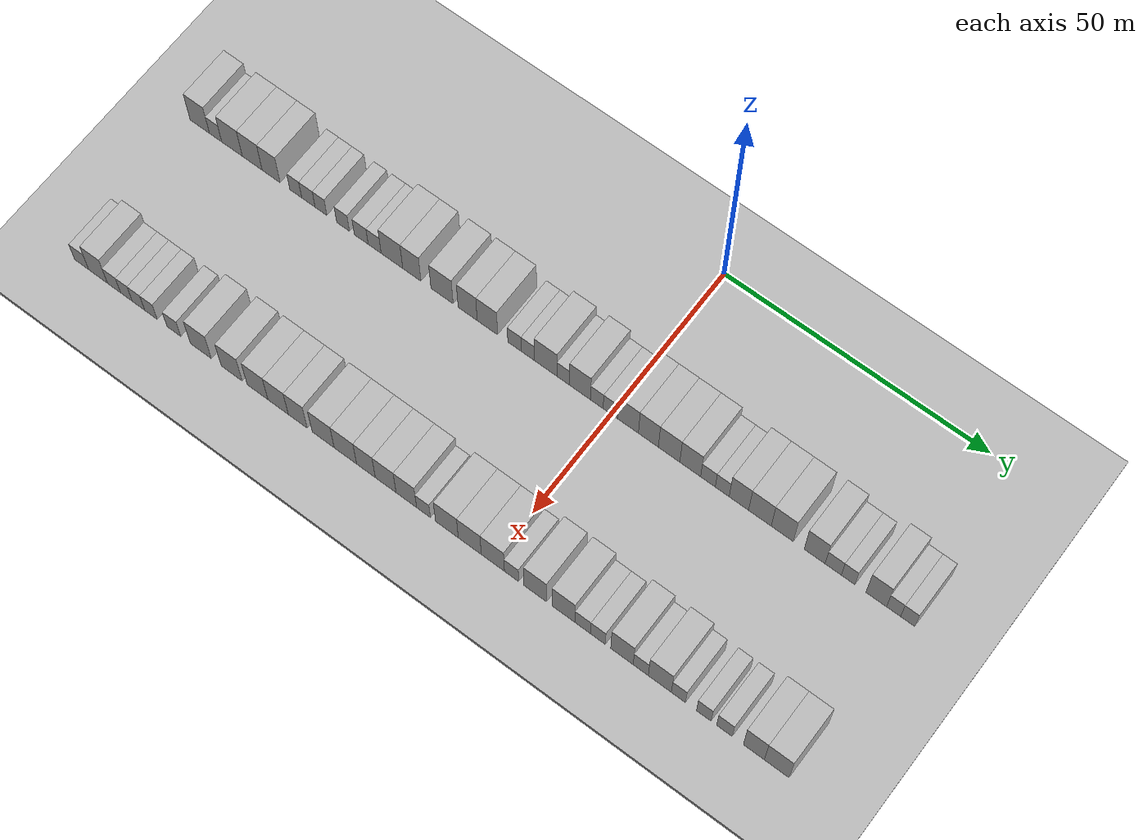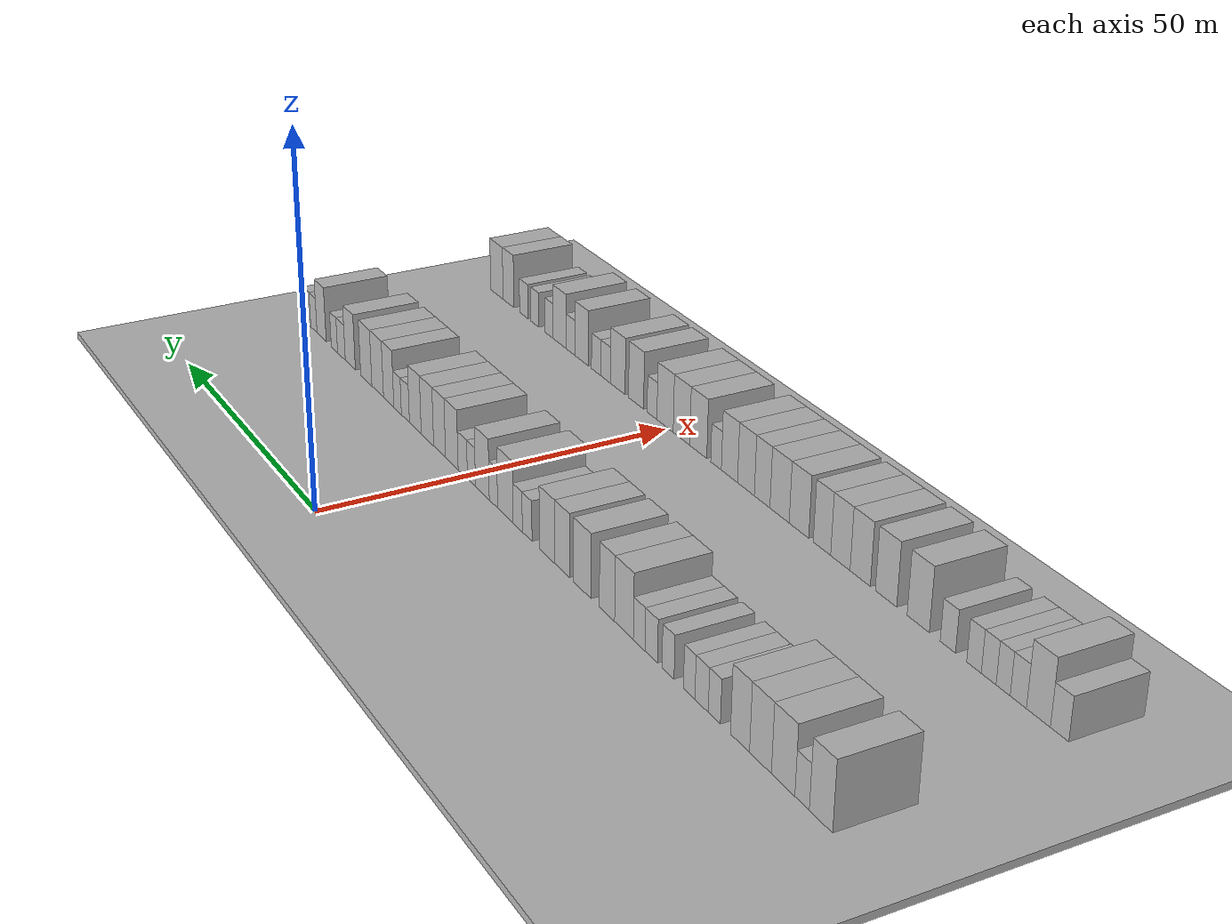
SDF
<sdf version="1.6">
 <world name="default">
  <include><name>ground_plane_1</name><uri>model://HANNAS_ground_plane</uri></include>
  <include>
   <name>ground_plane_2</name>
   <uri>model://HANNAS_ground_plane</uri>
   <pose>100 0 0  0 0 0</pose>
  </include>
  <model name="building_36">
   <static>1</static>
   <pose>25.0000 -82.6416 0 0.000000 0.000000 0.000000</pose>
   <link name="link">
    <pose>0 0 4.50 0 0 0</pose>
    <collision name="collision"><geometry><box><size>10.0000 4.0550 9.0000</size></box></geometry></collision>
    <visual name="visual">
     <cast_shadows>0</cast_shadows>
     <geometry><box><size>10.0000 4.0550 9.0000</size></box></geometry>
     <material>
      <script>
       <uri>model://HANNAS_wall/materials/scripts</uri>
       <uri>model://HANNAS_wall/materials/textures</uri>
       <name>vrc/HANNAS_wall</name>
      </script>
     </material>
    </visual>
   </link>
  </model>
  <model name="building_37">
   <static>1</static>
   <pose>25.0000 -79.3281 0 0.000000 0.000000 0.000000</pose>
   <link name="link">
    <pose>0 0 3.00 0 0 0</pose>
    <collision name="collision"><geometry><box><size>10.0000 2.5721 6.0000</size></box></geometry></collision>
    <visual name="visual">
     <cast_shadows>0</cast_shadows>
     <geometry><box><size>10.0000 2.5721 6.0000</size></box></geometry>
     <material>
      <script>
       <uri>model://HANNAS_wall/materials/scripts</uri>
       <uri>model://HANNAS_wall/materials/textures</uri>
       <name>vrc/HANNAS_wall</name>
      </script>
     </material>
    </visual>
   </link>
  </model>
  <model name="building_38">
   <static>1</static>
   <pose>25.0000 -75.8928 0 0.000000 0.000000 0.000000</pose>
   <link name="link">
    <pose>0 0 4.50 0 0 0</pose>
    <collision name="collision"><geometry><box><size>10.0000 4.2985 9.0000</size></box></geometry></collision>
    <visual name="visual">
     <cast_shadows>0</cast_shadows>
     <geometry><box><size>10.0000 4.2985 9.0000</size></box></geometry>
     <material>
      <script>
       <uri>model://HANNAS_wall/materials/scripts</uri>
       <uri>model://HANNAS_wall/materials/textures</uri>
       <name>vrc/HANNAS_wall</name>
      </script>
     </material>
    </visual>
   </link>
  </model>
  <model name="building_39">
   <static>1</static>
   <pose>25.0000 -71.6768 0 0.000000 0.000000 0.000000</pose>
   <link name="link">
    <pose>0 0 4.50 0 0 0</pose>
    <collision name="collision"><geometry><box><size>10.0000 4.1334 9.0000</size></box></geometry></collision>
    <visual name="visual">
     <cast_shadows>0</cast_shadows>
     <geometry><box><size>10.0000 4.1334 9.0000</size></box></geometry>
     <material>
      <script>
       <uri>model://HANNAS_wall/materials/scripts</uri>
       <uri>model://HANNAS_wall/materials/textures</uri>
       <name>vrc/HANNAS_wall</name>
      </script>
     </material>
    </visual>
   </link>
  </model>
  <model name="building_40">
   <static>1</static>
   <pose>25.0000 -67.7535 0 0.000000 0.000000 0.000000</pose>
   <link name="link">
    <pose>0 0 4.50 0 0 0</pose>
    <collision name="collision"><geometry><box><size>10.0000 3.7132 9.0000</size></box></geometry></collision>
    <visual name="visual">
     <cast_shadows>0</cast_shadows>
     <geometry><box><size>10.0000 3.7132 9.0000</size></box></geometry>
     <material>
      <script>
       <uri>model://HANNAS_wall/materials/scripts</uri>
       <uri>model://HANNAS_wall/materials/textures</uri>
       <name>vrc/HANNAS_wall</name>
      </script>
     </material>
    </visual>
   </link>
  </model>
  <model name="building_41">
   <static>1</static>
   <pose>25.0000 -62.6704 0 0.000000 0.000000 0.000000</pose>
   <link name="link">
    <pose>0 0 3.00 0 0 0</pose>
    <collision name="collision"><geometry><box><size>10.0000 2.4529 6.0000</size></box></geometry></collision>
    <visual name="visual">
     <cast_shadows>0</cast_shadows>
     <geometry><box><size>10.0000 2.4529 6.0000</size></box></geometry>
     <material>
      <script>
       <uri>model://HANNAS_wall/materials/scripts</uri>
       <uri>model://HANNAS_wall/materials/textures</uri>
       <name>vrc/HANNAS_wall</name>
      </script>
     </material>
    </visual>
   </link>
  </model>
  <model name="building_42">
   <static>1</static>
   <pose>25.0000 -60.0665 0 0.000000 0.000000 0.000000</pose>
   <link name="link">
    <pose>0 0 3.00 0 0 0</pose>
    <collision name="collision"><geometry><box><size>10.0000 2.7548 6.0000</size></box></geometry></collision>
    <visual name="visual">
     <cast_shadows>0</cast_shadows>
     <geometry><box><size>10.0000 2.7548 6.0000</size></box></geometry>
     <material>
      <script>
       <uri>model://HANNAS_wall/materials/scripts</uri>
       <uri>model://HANNAS_wall/materials/textures</uri>
       <name>vrc/HANNAS_wall</name>
      </script>
     </material>
    </visual>
   </link>
  </model>
  <model name="building_43">
   <static>1</static>
   <pose>25.0000 -57.4870 0 0.000000 0.000000 0.000000</pose>
   <link name="link">
    <pose>0 0 3.00 0 0 0</pose>
    <collision name="collision"><geometry><box><size>10.0000 2.4043 6.0000</size></box></geometry></collision>
    <visual name="visual">
     <cast_shadows>0</cast_shadows>
     <geometry><box><size>10.0000 2.4043 6.0000</size></box></geometry>
     <material>
      <script>
       <uri>model://HANNAS_wall/materials/scripts</uri>
       <uri>model://HANNAS_wall/materials/textures</uri>
       <name>vrc/HANNAS_wall</name>
      </script>
     </material>
    </visual>
   </link>
  </model>
  <model name="building_44">
   <static>1</static>
   <pose>25.0000 -52.9829 0 0.000000 0.000000 0.000000</pose>
   <link name="link">
    <pose>0 0 3.00 0 0 0</pose>
    <collision name="collision"><geometry><box><size>10.0000 2.6038 6.0000</size></box></geometry></collision>
    <visual name="visual">
     <cast_shadows>0</cast_shadows>
     <geometry><box><size>10.0000 2.6038 6.0000</size></box></geometry>
     <material>
      <script>
       <uri>model://HANNAS_wall/materials/scripts</uri>
       <uri>model://HANNAS_wall/materials/textures</uri>
       <name>vrc/HANNAS_wall</name>
      </script>
     </material>
    </visual>
   </link>
  </model>
  <model name="building_45">
   <static>1</static>
   <pose>25.0000 -49.2864 0 0.000000 0.000000 0.000000</pose>
   <link name="link">
    <pose>0 0 3.00 0 0 0</pose>
    <collision name="collision"><geometry><box><size>10.0000 2.7891 6.0000</size></box></geometry></collision>
    <visual name="visual">
     <cast_shadows>0</cast_shadows>
     <geometry><box><size>10.0000 2.7891 6.0000</size></box></geometry>
     <material>
      <script>
       <uri>model://HANNAS_wall/materials/scripts</uri>
       <uri>model://HANNAS_wall/materials/textures</uri>
       <name>vrc/HANNAS_wall</name>
      </script>
     </material>
    </visual>
   </link>
  </model>
  <model name="building_46">
   <static>1</static>
   <pose>25.0000 -46.5743 0 0.000000 0.000000 0.000000</pose>
   <link name="link">
    <pose>0 0 3.00 0 0 0</pose>
    <collision name="collision"><geometry><box><size>10.0000 2.6351 6.0000</size></box></geometry></collision>
    <visual name="visual">
     <cast_shadows>0</cast_shadows>
     <geometry><box><size>10.0000 2.6351 6.0000</size></box></geometry>
     <material>
      <script>
       <uri>model://HANNAS_wall/materials/scripts</uri>
       <uri>model://HANNAS_wall/materials/textures</uri>
       <name>vrc/HANNAS_wall</name>
      </script>
     </material>
    </visual>
   </link>
  </model>
  <model name="building_47">
   <static>1</static>
   <pose>25.0000 -43.0862 0 0.000000 0.000000 0.000000</pose>
   <link name="link">
    <pose>0 0 4.50 0 0 0</pose>
    <collision name="collision"><geometry><box><size>10.0000 4.3411 9.0000</size></box></geometry></collision>
    <visual name="visual">
     <cast_shadows>0</cast_shadows>
     <geometry><box><size>10.0000 4.3411 9.0000</size></box></geometry>
     <material>
      <script>
       <uri>model://HANNAS_wall/materials/scripts</uri>
       <uri>model://HANNAS_wall/materials/textures</uri>
       <name>vrc/HANNAS_wall</name>
      </script>
     </material>
    </visual>
   </link>
  </model>
  <model name="building_48">
   <static>1</static>
   <pose>25.0000 -39.0927 0 0.000000 0.000000 0.000000</pose>
   <link name="link">
    <pose>0 0 4.50 0 0 0</pose>
    <collision name="collision"><geometry><box><size>10.0000 3.6459 9.0000</size></box></geometry></collision>
    <visual name="visual">
     <cast_shadows>0</cast_shadows>
     <geometry><box><size>10.0000 3.6459 9.0000</size></box></geometry>
     <material>
      <script>
       <uri>model://HANNAS_wall/materials/scripts</uri>
       <uri>model://HANNAS_wall/materials/textures</uri>
       <name>vrc/HANNAS_wall</name>
      </script>
     </material>
    </visual>
   </link>
  </model>
  <model name="building_49">
   <static>1</static>
   <pose>25.0000 -33.0676 0 0.000000 0.000000 0.000000</pose>
   <link name="link">
    <pose>0 0 4.50 0 0 0</pose>
    <collision name="collision"><geometry><box><size>10.0000 4.4043 9.0000</size></box></geometry></collision>
    <visual name="visual">
     <cast_shadows>0</cast_shadows>
     <geometry><box><size>10.0000 4.4043 9.0000</size></box></geometry>
     <material>
      <script>
       <uri>model://HANNAS_wall/materials/scripts</uri>
       <uri>model://HANNAS_wall/materials/textures</uri>
       <name>vrc/HANNAS_wall</name>
      </script>
     </material>
    </visual>
   </link>
  </model>
  <model name="building_50">
   <static>1</static>
   <pose>25.0000 -27.9828 0 0.000000 0.000000 0.000000</pose>
   <link name="link">
    <pose>0 0 4.50 0 0 0</pose>
    <collision name="collision"><geometry><box><size>10.0000 3.7653 9.0000</size></box></geometry></collision>
    <visual name="visual">
     <cast_shadows>0</cast_shadows>
     <geometry><box><size>10.0000 3.7653 9.0000</size></box></geometry>
     <material>
      <script>
       <uri>model://HANNAS_wall/materials/scripts</uri>
       <uri>model://HANNAS_wall/materials/textures</uri>
       <name>vrc/HANNAS_wall</name>
      </script>
     </material>
    </visual>
   </link>
  </model>
  <model name="building_51">
   <static>1</static>
   <pose>25.0000 -24.0890 0 0.000000 0.000000 0.000000</pose>
   <link name="link">
    <pose>0 0 4.50 0 0 0</pose>
    <collision name="collision"><geometry><box><size>10.0000 4.0223 9.0000</size></box></geometry></collision>
    <visual name="visual">
     <cast_shadows>0</cast_shadows>
     <geometry><box><size>10.0000 4.0223 9.0000</size></box></geometry>
     <material>
      <script>
       <uri>model://HANNAS_wall/materials/scripts</uri>
       <uri>model://HANNAS_wall/materials/textures</uri>
       <name>vrc/HANNAS_wall</name>
      </script>
     </material>
    </visual>
   </link>
  </model>
  <model name="building_52">
   <static>1</static>
   <pose>25.0000 -18.7575 0 0.000000 0.000000 0.000000</pose>
   <link name="link">
    <pose>0 0 3.00 0 0 0</pose>
    <collision name="collision"><geometry><box><size>10.0000 2.6407 6.0000</size></box></geometry></collision>
    <visual name="visual">
     <cast_shadows>0</cast_shadows>
     <geometry><box><size>10.0000 2.6407 6.0000</size></box></geometry>
     <material>
      <script>
       <uri>model://HANNAS_wall/materials/scripts</uri>
       <uri>model://HANNAS_wall/materials/textures</uri>
       <name>vrc/HANNAS_wall</name>
      </script>
     </material>
    </visual>
   </link>
  </model>
  <model name="building_53">
   <static>1</static>
   <pose>25.0000 -16.1649 0 0.000000 0.000000 0.000000</pose>
   <link name="link">
    <pose>0 0 3.00 0 0 0</pose>
    <collision name="collision"><geometry><box><size>10.0000 2.5445 6.0000</size></box></geometry></collision>
    <visual name="visual">
     <cast_shadows>0</cast_shadows>
     <geometry><box><size>10.0000 2.5445 6.0000</size></box></geometry>
     <material>
      <script>
       <uri>model://HANNAS_wall/materials/scripts</uri>
       <uri>model://HANNAS_wall/materials/textures</uri>
       <name>vrc/HANNAS_wall</name>
      </script>
     </material>
    </visual>
   </link>
  </model>
  <model name="building_54">
   <static>1</static>
   <pose>25.0000 -12.6950 0 0.000000 0.000000 0.000000</pose>
   <link name="link">
    <pose>0 0 4.50 0 0 0</pose>
    <collision name="collision"><geometry><box><size>10.0000 4.3954 9.0000</size></box></geometry></collision>
    <visual name="visual">
     <cast_shadows>0</cast_shadows>
     <geometry><box><size>10.0000 4.3954 9.0000</size></box></geometry>
     <material>
      <script>
       <uri>model://HANNAS_wall/materials/scripts</uri>
       <uri>model://HANNAS_wall/materials/textures</uri>
       <name>vrc/HANNAS_wall</name>
      </script>
     </material>
    </visual>
   </link>
  </model>
  <model name="building_55">
   <static>1</static>
   <pose>25.0000 -9.2939 0 0.000000 0.000000 0.000000</pose>
   <link name="link">
    <pose>0 0 3.00 0 0 0</pose>
    <collision name="collision"><geometry><box><size>10.0000 2.4067 6.0000</size></box></geometry></collision>
    <visual name="visual">
     <cast_shadows>0</cast_shadows>
     <geometry><box><size>10.0000 2.4067 6.0000</size></box></geometry>
     <material>
      <script>
       <uri>model://HANNAS_wall/materials/scripts</uri>
       <uri>model://HANNAS_wall/materials/textures</uri>
       <name>vrc/HANNAS_wall</name>
      </script>
     </material>
    </visual>
   </link>
  </model>
  <model name="building_56">
   <static>1</static>
   <pose>25.0000 -6.0536 0 0.000000 0.000000 0.000000</pose>
   <link name="link">
    <pose>0 0 4.50 0 0 0</pose>
    <collision name="collision"><geometry><box><size>10.0000 4.0739 9.0000</size></box></geometry></collision>
    <visual name="visual">
     <cast_shadows>0</cast_shadows>
     <geometry><box><size>10.0000 4.0739 9.0000</size></box></geometry>
     <material>
      <script>
       <uri>model://HANNAS_wall/materials/scripts</uri>
       <uri>model://HANNAS_wall/materials/textures</uri>
       <name>vrc/HANNAS_wall</name>
      </script>
     </material>
    </visual>
   </link>
  </model>
  <model name="building_57">
   <static>1</static>
   <pose>25.0000 -2.8043 0 0.000000 0.000000 0.000000</pose>
   <link name="link">
    <pose>0 0 3.00 0 0 0</pose>
    <collision name="collision"><geometry><box><size>10.0000 2.4248 6.0000</size></box></geometry></collision>
    <visual name="visual">
     <cast_shadows>0</cast_shadows>
     <geometry><box><size>10.0000 2.4248 6.0000</size></box></geometry>
     <material>
      <script>
       <uri>model://HANNAS_wall/materials/scripts</uri>
       <uri>model://HANNAS_wall/materials/textures</uri>
       <name>vrc/HANNAS_wall</name>
      </script>
     </material>
    </visual>
   </link>
  </model>
  <model name="building_58">
   <static>1</static>
   <pose>25.0000 -0.1813 0 0.000000 0.000000 0.000000</pose>
   <link name="link">
    <pose>0 0 3.00 0 0 0</pose>
    <collision name="collision"><geometry><box><size>10.0000 2.8211 6.0000</size></box></geometry></collision>
    <visual name="visual">
     <cast_shadows>0</cast_shadows>
     <geometry><box><size>10.0000 2.8211 6.0000</size></box></geometry>
     <material>
      <script>
       <uri>model://HANNAS_wall/materials/scripts</uri>
       <uri>model://HANNAS_wall/materials/textures</uri>
       <name>vrc/HANNAS_wall</name>
      </script>
     </material>
    </visual>
   </link>
  </model>
  <model name="building_59">
   <static>1</static>
   <pose>25.0000 3.1887 0 0.000000 0.000000 0.000000</pose>
   <link name="link">
    <pose>0 0 4.50 0 0 0</pose>
    <collision name="collision"><geometry><box><size>10.0000 3.9189 9.0000</size></box></geometry></collision>
    <visual name="visual">
     <cast_shadows>0</cast_shadows>
     <geometry><box><size>10.0000 3.9189 9.0000</size></box></geometry>
     <material>
      <script>
       <uri>model://HANNAS_wall/materials/scripts</uri>
       <uri>model://HANNAS_wall/materials/textures</uri>
       <name>vrc/HANNAS_wall</name>
      </script>
     </material>
    </visual>
   </link>
  </model>
  <model name="building_60">
   <static>1</static>
   <pose>25.0000 7.0457 0 0.000000 0.000000 0.000000</pose>
   <link name="link">
    <pose>0 0 4.50 0 0 0</pose>
    <collision name="collision"><geometry><box><size>10.0000 3.7951 9.0000</size></box></geometry></collision>
    <visual name="visual">
     <cast_shadows>0</cast_shadows>
     <geometry><box><size>10.0000 3.7951 9.0000</size></box></geometry>
     <material>
      <script>
       <uri>model://HANNAS_wall/materials/scripts</uri>
       <uri>model://HANNAS_wall/materials/textures</uri>
       <name>vrc/HANNAS_wall</name>
      </script>
     </material>
    </visual>
   </link>
  </model>
  <model name="building_61">
   <static>1</static>
   <pose>25.0000 10.9666 0 0.000000 0.000000 0.000000</pose>
   <link name="link">
    <pose>0 0 4.50 0 0 0</pose>
    <collision name="collision"><geometry><box><size>10.0000 4.0467 9.0000</size></box></geometry></collision>
    <visual name="visual">
     <cast_shadows>0</cast_shadows>
     <geometry><box><size>10.0000 4.0467 9.0000</size></box></geometry>
     <material>
      <script>
       <uri>model://HANNAS_wall/materials/scripts</uri>
       <uri>model://HANNAS_wall/materials/textures</uri>
       <name>vrc/HANNAS_wall</name>
      </script>
     </material>
    </visual>
   </link>
  </model>
  <model name="building_62">
   <static>1</static>
   <pose>25.0000 14.9535 0 0.000000 0.000000 0.000000</pose>
   <link name="link">
    <pose>0 0 4.50 0 0 0</pose>
    <collision name="collision"><geometry><box><size>10.0000 3.9272 9.0000</size></box></geometry></collision>
    <visual name="visual">
     <cast_shadows>0</cast_shadows>
     <geometry><box><size>10.0000 3.9272 9.0000</size></box></geometry>
     <material>
      <script>
       <uri>model://HANNAS_wall/materials/scripts</uri>
       <uri>model://HANNAS_wall/materials/textures</uri>
       <name>vrc/HANNAS_wall</name>
      </script>
     </material>
    </visual>
   </link>
  </model>
  <model name="building_63">
   <static>1</static>
   <pose>25.0000 18.2872 0 0.000000 0.000000 0.000000</pose>
   <link name="link">
    <pose>0 0 3.00 0 0 0</pose>
    <collision name="collision"><geometry><box><size>10.0000 2.7402 6.0000</size></box></geometry></collision>
    <visual name="visual">
     <cast_shadows>0</cast_shadows>
     <geometry><box><size>10.0000 2.7402 6.0000</size></box></geometry>
     <material>
      <script>
       <uri>model://HANNAS_wall/materials/scripts</uri>
       <uri>model://HANNAS_wall/materials/textures</uri>
       <name>vrc/HANNAS_wall</name>
      </script>
     </material>
    </visual>
   </link>
  </model>
  <model name="building_64">
   <static>1</static>
   <pose>25.0000 20.9564 0 0.000000 0.000000 0.000000</pose>
   <link name="link">
    <pose>0 0 3.00 0 0 0</pose>
    <collision name="collision"><geometry><box><size>10.0000 2.5982 6.0000</size></box></geometry></collision>
    <visual name="visual">
     <cast_shadows>0</cast_shadows>
     <geometry><box><size>10.0000 2.5982 6.0000</size></box></geometry>
     <material>
      <script>
       <uri>model://HANNAS_wall/materials/scripts</uri>
       <uri>model://HANNAS_wall/materials/textures</uri>
       <name>vrc/HANNAS_wall</name>
      </script>
     </material>
    </visual>
   </link>
  </model>
  <model name="building_65">
   <static>1</static>
   <pose>25.0000 24.0666 0 0.000000 0.000000 0.000000</pose>
   <link name="link">
    <pose>0 0 4.50 0 0 0</pose>
    <collision name="collision"><geometry><box><size>10.0000 3.6220 9.0000</size></box></geometry></collision>
    <visual name="visual">
     <cast_shadows>0</cast_shadows>
     <geometry><box><size>10.0000 3.6220 9.0000</size></box></geometry>
     <material>
      <script>
       <uri>model://HANNAS_wall/materials/scripts</uri>
       <uri>model://HANNAS_wall/materials/textures</uri>
       <name>vrc/HANNAS_wall</name>
      </script>
     </material>
    </visual>
   </link>
  </model>
  <model name="building_66">
   <static>1</static>
   <pose>25.0000 27.9752 0 0.000000 0.000000 0.000000</pose>
   <link name="link">
    <pose>0 0 4.50 0 0 0</pose>
    <collision name="collision"><geometry><box><size>10.0000 4.1953 9.0000</size></box></geometry></collision>
    <visual name="visual">
     <cast_shadows>0</cast_shadows>
     <geometry><box><size>10.0000 4.1953 9.0000</size></box></geometry>
     <material>
      <script>
       <uri>model://HANNAS_wall/materials/scripts</uri>
       <uri>model://HANNAS_wall/materials/textures</uri>
       <name>vrc/HANNAS_wall</name>
      </script>
     </material>
    </visual>
   </link>
  </model>
  <model name="building_67">
   <static>1</static>
   <pose>25.0000 32.1123 0 0.000000 0.000000 0.000000</pose>
   <link name="link">
    <pose>0 0 4.50 0 0 0</pose>
    <collision name="collision"><geometry><box><size>10.0000 4.0789 9.0000</size></box></geometry></collision>
    <visual name="visual">
     <cast_shadows>0</cast_shadows>
     <geometry><box><size>10.0000 4.0789 9.0000</size></box></geometry>
     <material>
      <script>
       <uri>model://HANNAS_wall/materials/scripts</uri>
       <uri>model://HANNAS_wall/materials/textures</uri>
       <name>vrc/HANNAS_wall</name>
      </script>
     </material>
    </visual>
   </link>
  </model>
  <model name="building_68">
   <static>1</static>
   <pose>25.0000 38.0641 0 0.000000 0.000000 0.000000</pose>
   <link name="link">
    <pose>0 0 4.50 0 0 0</pose>
    <collision name="collision"><geometry><box><size>10.0000 3.8247 9.0000</size></box></geometry></collision>
    <visual name="visual">
     <cast_shadows>0</cast_shadows>
     <geometry><box><size>10.0000 3.8247 9.0000</size></box></geometry>
     <material>
      <script>
       <uri>model://HANNAS_wall/materials/scripts</uri>
       <uri>model://HANNAS_wall/materials/textures</uri>
       <name>vrc/HANNAS_wall</name>
      </script>
     </material>
    </visual>
   </link>
  </model>
  <model name="building_69">
   <static>1</static>
   <pose>25.0000 41.4585 0 0.000000 0.000000 0.000000</pose>
   <link name="link">
    <pose>0 0 3.00 0 0 0</pose>
    <collision name="collision"><geometry><box><size>10.0000 2.9641 6.0000</size></box></geometry></collision>
    <visual name="visual">
     <cast_shadows>0</cast_shadows>
     <geometry><box><size>10.0000 2.9641 6.0000</size></box></geometry>
     <material>
      <script>
       <uri>model://HANNAS_wall/materials/scripts</uri>
       <uri>model://HANNAS_wall/materials/textures</uri>
       <name>vrc/HANNAS_wall</name>
      </script>
     </material>
    </visual>
   </link>
  </model>
  <model name="building_70">
   <static>1</static>
   <pose>25.0000 44.1773 0 0.000000 0.000000 0.000000</pose>
   <link name="link">
    <pose>0 0 3.00 0 0 0</pose>
    <collision name="collision"><geometry><box><size>10.0000 2.4734 6.0000</size></box></geometry></collision>
    <visual name="visual">
     <cast_shadows>0</cast_shadows>
     <geometry><box><size>10.0000 2.4734 6.0000</size></box></geometry>
     <material>
      <script>
       <uri>model://HANNAS_wall/materials/scripts</uri>
       <uri>model://HANNAS_wall/materials/textures</uri>
       <name>vrc/HANNAS_wall</name>
      </script>
     </material>
    </visual>
   </link>
  </model>
  <model name="building_71">
   <static>1</static>
   <pose>25.0000 49.2702 0 0.000000 0.000000 0.000000</pose>
   <link name="link">
    <pose>0 0 4.50 0 0 0</pose>
    <collision name="collision"><geometry><box><size>10.0000 3.7124 9.0000</size></box></geometry></collision>
    <visual name="visual">
     <cast_shadows>0</cast_shadows>
     <geometry><box><size>10.0000 3.7124 9.0000</size></box></geometry>
     <material>
      <script>
       <uri>model://HANNAS_wall/materials/scripts</uri>
       <uri>model://HANNAS_wall/materials/textures</uri>
       <name>vrc/HANNAS_wall</name>
      </script>
     </material>
    </visual>
   </link>
  </model>
  <model name="building_72">
   <static>1</static>
   <pose>25.0000 52.3967 0 0.000000 0.000000 0.000000</pose>
   <link name="link">
    <pose>0 0 3.00 0 0 0</pose>
    <collision name="collision"><geometry><box><size>10.0000 2.5408 6.0000</size></box></geometry></collision>
    <visual name="visual">
     <cast_shadows>0</cast_shadows>
     <geometry><box><size>10.0000 2.5408 6.0000</size></box></geometry>
     <material>
      <script>
       <uri>model://HANNAS_wall/materials/scripts</uri>
       <uri>model://HANNAS_wall/materials/textures</uri>
       <name>vrc/HANNAS_wall</name>
      </script>
     </material>
    </visual>
   </link>
  </model>
  <model name="building_73">
   <static>1</static>
   <pose>25.0000 54.9400 0 0.000000 0.000000 0.000000</pose>
   <link name="link">
    <pose>0 0 3.00 0 0 0</pose>
    <collision name="collision"><geometry><box><size>10.0000 2.5457 6.0000</size></box></geometry></collision>
    <visual name="visual">
     <cast_shadows>0</cast_shadows>
     <geometry><box><size>10.0000 2.5457 6.0000</size></box></geometry>
     <material>
      <script>
       <uri>model://HANNAS_wall/materials/scripts</uri>
       <uri>model://HANNAS_wall/materials/textures</uri>
       <name>vrc/HANNAS_wall</name>
      </script>
     </material>
    </visual>
   </link>
  </model>
  <model name="building_142">
   <static>1</static>
   <pose>55.0000 -81.6500 0 0.000000 0.000000 0.000000</pose>
   <link name="link">
    <pose>0 0 3.00 0 0 0</pose>
    <collision name="collision"><geometry><box><size>10.0000 2.9319 6.0000</size></box></geometry></collision>
    <visual name="visual">
     <cast_shadows>0</cast_shadows>
     <geometry><box><size>10.0000 2.9319 6.0000</size></box></geometry>
     <material>
      <script>
       <uri>model://HANNAS_wall/materials/scripts</uri>
       <uri>model://HANNAS_wall/materials/textures</uri>
       <name>vrc/HANNAS_wall</name>
      </script>
     </material>
    </visual>
   </link>
  </model>
  <model name="building_143">
   <static>1</static>
   <pose>55.0000 -78.2285 0 0.000000 0.000000 0.000000</pose>
   <link name="link">
    <pose>0 0 4.50 0 0 0</pose>
    <collision name="collision"><geometry><box><size>10.0000 3.9110 9.0000</size></box></geometry></collision>
    <visual name="visual">
     <cast_shadows>0</cast_shadows>
     <geometry><box><size>10.0000 3.9110 9.0000</size></box></geometry>
     <material>
      <script>
       <uri>model://HANNAS_wall/materials/scripts</uri>
       <uri>model://HANNAS_wall/materials/textures</uri>
       <name>vrc/HANNAS_wall</name>
      </script>
     </material>
    </visual>
   </link>
  </model>
  <model name="building_144">
   <static>1</static>
   <pose>55.0000 -74.9191 0 0.000000 0.000000 0.000000</pose>
   <link name="link">
    <pose>0 0 3.00 0 0 0</pose>
    <collision name="collision"><geometry><box><size>10.0000 2.7078 6.0000</size></box></geometry></collision>
    <visual name="visual">
     <cast_shadows>0</cast_shadows>
     <geometry><box><size>10.0000 2.7078 6.0000</size></box></geometry>
     <material>
      <script>
       <uri>model://HANNAS_wall/materials/scripts</uri>
       <uri>model://HANNAS_wall/materials/textures</uri>
       <name>vrc/HANNAS_wall</name>
      </script>
     </material>
    </visual>
   </link>
  </model>
  <model name="building_145">
   <static>1</static>
   <pose>55.0000 -72.3648 0 0.000000 0.000000 0.000000</pose>
   <link name="link">
    <pose>0 0 3.00 0 0 0</pose>
    <collision name="collision"><geometry><box><size>10.0000 2.4008 6.0000</size></box></geometry></collision>
    <visual name="visual">
     <cast_shadows>0</cast_shadows>
     <geometry><box><size>10.0000 2.4008 6.0000</size></box></geometry>
     <material>
      <script>
       <uri>model://HANNAS_wall/materials/scripts</uri>
       <uri>model://HANNAS_wall/materials/textures</uri>
       <name>vrc/HANNAS_wall</name>
      </script>
     </material>
    </visual>
   </link>
  </model>
  <model name="building_146">
   <static>1</static>
   <pose>55.0000 -69.8818 0 0.000000 0.000000 0.000000</pose>
   <link name="link">
    <pose>0 0 3.00 0 0 0</pose>
    <collision name="collision"><geometry><box><size>10.0000 2.5652 6.0000</size></box></geometry></collision>
    <visual name="visual">
     <cast_shadows>0</cast_shadows>
     <geometry><box><size>10.0000 2.5652 6.0000</size></box></geometry>
     <material>
      <script>
       <uri>model://HANNAS_wall/materials/scripts</uri>
       <uri>model://HANNAS_wall/materials/textures</uri>
       <name>vrc/HANNAS_wall</name>
      </script>
     </material>
    </visual>
   </link>
  </model>
  <model name="building_147">
   <static>1</static>
   <pose>55.0000 -67.3146 0 0.000000 0.000000 0.000000</pose>
   <link name="link">
    <pose>0 0 3.00 0 0 0</pose>
    <collision name="collision"><geometry><box><size>10.0000 2.5694 6.0000</size></box></geometry></collision>
    <visual name="visual">
     <cast_shadows>0</cast_shadows>
     <geometry><box><size>10.0000 2.5694 6.0000</size></box></geometry>
     <material>
      <script>
       <uri>model://HANNAS_wall/materials/scripts</uri>
       <uri>model://HANNAS_wall/materials/textures</uri>
       <name>vrc/HANNAS_wall</name>
      </script>
     </material>
    </visual>
   </link>
  </model>
  <model name="building_148">
   <static>1</static>
   <pose>55.0000 -62.6272 0 0.000000 0.000000 0.000000</pose>
   <link name="link">
    <pose>0 0 3.00 0 0 0</pose>
    <collision name="collision"><geometry><box><size>10.0000 2.8053 6.0000</size></box></geometry></collision>
    <visual name="visual">
     <cast_shadows>0</cast_shadows>
     <geometry><box><size>10.0000 2.8053 6.0000</size></box></geometry>
     <material>
      <script>
       <uri>model://HANNAS_wall/materials/scripts</uri>
       <uri>model://HANNAS_wall/materials/textures</uri>
       <name>vrc/HANNAS_wall</name>
      </script>
     </material>
    </visual>
   </link>
  </model>
  <model name="building_149">
   <static>1</static>
   <pose>55.0000 -57.1163 0 0.000000 0.000000 0.000000</pose>
   <link name="link">
    <pose>0 0 4.50 0 0 0</pose>
    <collision name="collision"><geometry><box><size>10.0000 4.2167 9.0000</size></box></geometry></collision>
    <visual name="visual">
     <cast_shadows>0</cast_shadows>
     <geometry><box><size>10.0000 4.2167 9.0000</size></box></geometry>
     <material>
      <script>
       <uri>model://HANNAS_wall/materials/scripts</uri>
       <uri>model://HANNAS_wall/materials/textures</uri>
       <name>vrc/HANNAS_wall</name>
      </script>
     </material>
    </visual>
   </link>
  </model>
  <model name="building_150">
   <static>1</static>
   <pose>55.0000 -50.8945 0 0.000000 0.000000 0.000000</pose>
   <link name="link">
    <pose>0 0 4.50 0 0 0</pose>
    <collision name="collision"><geometry><box><size>10.0000 4.2269 9.0000</size></box></geometry></collision>
    <visual name="visual">
     <cast_shadows>0</cast_shadows>
     <geometry><box><size>10.0000 4.2269 9.0000</size></box></geometry>
     <material>
      <script>
       <uri>model://HANNAS_wall/materials/scripts</uri>
       <uri>model://HANNAS_wall/materials/textures</uri>
       <name>vrc/HANNAS_wall</name>
      </script>
     </material>
    </visual>
   </link>
  </model>
  <model name="building_151">
   <static>1</static>
   <pose>55.0000 -45.7098 0 0.000000 0.000000 0.000000</pose>
   <link name="link">
    <pose>0 0 4.50 0 0 0</pose>
    <collision name="collision"><geometry><box><size>10.0000 4.1424 9.0000</size></box></geometry></collision>
    <visual name="visual">
     <cast_shadows>0</cast_shadows>
     <geometry><box><size>10.0000 4.1424 9.0000</size></box></geometry>
     <material>
      <script>
       <uri>model://HANNAS_wall/materials/scripts</uri>
       <uri>model://HANNAS_wall/materials/textures</uri>
       <name>vrc/HANNAS_wall</name>
      </script>
     </material>
    </visual>
   </link>
  </model>
  <model name="building_152">
   <static>1</static>
   <pose>55.0000 -41.6051 0 0.000000 0.000000 0.000000</pose>
   <link name="link">
    <pose>0 0 4.50 0 0 0</pose>
    <collision name="collision"><geometry><box><size>10.0000 4.0669 9.0000</size></box></geometry></collision>
    <visual name="visual">
     <cast_shadows>0</cast_shadows>
     <geometry><box><size>10.0000 4.0669 9.0000</size></box></geometry>
     <material>
      <script>
       <uri>model://HANNAS_wall/materials/scripts</uri>
       <uri>model://HANNAS_wall/materials/textures</uri>
       <name>vrc/HANNAS_wall</name>
      </script>
     </material>
    </visual>
   </link>
  </model>
  <model name="building_153">
   <static>1</static>
   <pose>55.0000 -37.7034 0 0.000000 0.000000 0.000000</pose>
   <link name="link">
    <pose>0 0 4.50 0 0 0</pose>
    <collision name="collision"><geometry><box><size>10.0000 3.7365 9.0000</size></box></geometry></collision>
    <visual name="visual">
     <cast_shadows>0</cast_shadows>
     <geometry><box><size>10.0000 3.7365 9.0000</size></box></geometry>
     <material>
      <script>
       <uri>model://HANNAS_wall/materials/scripts</uri>
       <uri>model://HANNAS_wall/materials/textures</uri>
       <name>vrc/HANNAS_wall</name>
      </script>
     </material>
    </visual>
   </link>
  </model>
  <model name="building_154">
   <static>1</static>
   <pose>55.0000 -32.6665 0 0.000000 0.000000 0.000000</pose>
   <link name="link">
    <pose>0 0 4.50 0 0 0</pose>
    <collision name="collision"><geometry><box><size>10.0000 4.3372 9.0000</size></box></geometry></collision>
    <visual name="visual">
     <cast_shadows>0</cast_shadows>
     <geometry><box><size>10.0000 4.3372 9.0000</size></box></geometry>
     <material>
      <script>
       <uri>model://HANNAS_wall/materials/scripts</uri>
       <uri>model://HANNAS_wall/materials/textures</uri>
       <name>vrc/HANNAS_wall</name>
      </script>
     </material>
    </visual>
   </link>
  </model>
  <model name="building_155">
   <static>1</static>
   <pose>55.0000 -28.2984 0 0.000000 0.000000 0.000000</pose>
   <link name="link">
    <pose>0 0 4.50 0 0 0</pose>
    <collision name="collision"><geometry><box><size>10.0000 4.3990 9.0000</size></box></geometry></collision>
    <visual name="visual">
     <cast_shadows>0</cast_shadows>
     <geometry><box><size>10.0000 4.3990 9.0000</size></box></geometry>
     <material>
      <script>
       <uri>model://HANNAS_wall/materials/scripts</uri>
       <uri>model://HANNAS_wall/materials/textures</uri>
       <name>vrc/HANNAS_wall</name>
      </script>
     </material>
    </visual>
   </link>
  </model>
  <model name="building_156">
   <static>1</static>
   <pose>55.0000 -24.2727 0 0.000000 0.000000 0.000000</pose>
   <link name="link">
    <pose>0 0 4.50 0 0 0</pose>
    <collision name="collision"><geometry><box><size>10.0000 3.6523 9.0000</size></box></geometry></collision>
    <visual name="visual">
     <cast_shadows>0</cast_shadows>
     <geometry><box><size>10.0000 3.6523 9.0000</size></box></geometry>
     <material>
      <script>
       <uri>model://HANNAS_wall/materials/scripts</uri>
       <uri>model://HANNAS_wall/materials/textures</uri>
       <name>vrc/HANNAS_wall</name>
      </script>
     </material>
    </visual>
   </link>
  </model>
  <model name="building_157">
   <static>1</static>
   <pose>55.0000 -20.4346 0 0.000000 0.000000 0.000000</pose>
   <link name="link">
    <pose>0 0 4.50 0 0 0</pose>
    <collision name="collision"><geometry><box><size>10.0000 4.0240 9.0000</size></box></geometry></collision>
    <visual name="visual">
     <cast_shadows>0</cast_shadows>
     <geometry><box><size>10.0000 4.0240 9.0000</size></box></geometry>
     <material>
      <script>
       <uri>model://HANNAS_wall/materials/scripts</uri>
       <uri>model://HANNAS_wall/materials/textures</uri>
       <name>vrc/HANNAS_wall</name>
      </script>
     </material>
    </visual>
   </link>
  </model>
  <model name="building_158">
   <static>1</static>
   <pose>55.0000 -16.4394 0 0.000000 0.000000 0.000000</pose>
   <link name="link">
    <pose>0 0 4.50 0 0 0</pose>
    <collision name="collision"><geometry><box><size>10.0000 3.9663 9.0000</size></box></geometry></collision>
    <visual name="visual">
     <cast_shadows>0</cast_shadows>
     <geometry><box><size>10.0000 3.9663 9.0000</size></box></geometry>
     <material>
      <script>
       <uri>model://HANNAS_wall/materials/scripts</uri>
       <uri>model://HANNAS_wall/materials/textures</uri>
       <name>vrc/HANNAS_wall</name>
      </script>
     </material>
    </visual>
   </link>
  </model>
  <model name="building_159">
   <static>1</static>
   <pose>55.0000 -13.1335 0 0.000000 0.000000 0.000000</pose>
   <link name="link">
    <pose>0 0 3.00 0 0 0</pose>
    <collision name="collision"><geometry><box><size>10.0000 2.6455 6.0000</size></box></geometry></collision>
    <visual name="visual">
     <cast_shadows>0</cast_shadows>
     <geometry><box><size>10.0000 2.6455 6.0000</size></box></geometry>
     <material>
      <script>
       <uri>model://HANNAS_wall/materials/scripts</uri>
       <uri>model://HANNAS_wall/materials/textures</uri>
       <name>vrc/HANNAS_wall</name>
      </script>
     </material>
    </visual>
   </link>
  </model>
  <model name="building_160">
   <static>1</static>
   <pose>55.0000 -8.6328 0 0.000000 0.000000 0.000000</pose>
   <link name="link">
    <pose>0 0 4.50 0 0 0</pose>
    <collision name="collision"><geometry><box><size>10.0000 4.3558 9.0000</size></box></geometry></collision>
    <visual name="visual">
     <cast_shadows>0</cast_shadows>
     <geometry><box><size>10.0000 4.3558 9.0000</size></box></geometry>
     <material>
      <script>
       <uri>model://HANNAS_wall/materials/scripts</uri>
       <uri>model://HANNAS_wall/materials/textures</uri>
       <name>vrc/HANNAS_wall</name>
      </script>
     </material>
    </visual>
   </link>
  </model>
  <model name="building_161">
   <static>1</static>
   <pose>55.0000 -4.2674 0 0.000000 0.000000 0.000000</pose>
   <link name="link">
    <pose>0 0 4.50 0 0 0</pose>
    <collision name="collision"><geometry><box><size>10.0000 4.3750 9.0000</size></box></geometry></collision>
    <visual name="visual">
     <cast_shadows>0</cast_shadows>
     <geometry><box><size>10.0000 4.3750 9.0000</size></box></geometry>
     <material>
      <script>
       <uri>model://HANNAS_wall/materials/scripts</uri>
       <uri>model://HANNAS_wall/materials/textures</uri>
       <name>vrc/HANNAS_wall</name>
      </script>
     </material>
    </visual>
   </link>
  </model>
  <model name="building_162">
   <static>1</static>
   <pose>55.0000 0.1154 0 0.000000 0.000000 0.000000</pose>
   <link name="link">
    <pose>0 0 4.50 0 0 0</pose>
    <collision name="collision"><geometry><box><size>10.0000 4.3906 9.0000</size></box></geometry></collision>
    <visual name="visual">
     <cast_shadows>0</cast_shadows>
     <geometry><box><size>10.0000 4.3906 9.0000</size></box></geometry>
     <material>
      <script>
       <uri>model://HANNAS_wall/materials/scripts</uri>
       <uri>model://HANNAS_wall/materials/textures</uri>
       <name>vrc/HANNAS_wall</name>
      </script>
     </material>
    </visual>
   </link>
  </model>
  <model name="building_163">
   <static>1</static>
   <pose>55.0000 3.6528 0 0.000000 0.000000 0.000000</pose>
   <link name="link">
    <pose>0 0 3.00 0 0 0</pose>
    <collision name="collision"><geometry><box><size>10.0000 2.6843 6.0000</size></box></geometry></collision>
    <visual name="visual">
     <cast_shadows>0</cast_shadows>
     <geometry><box><size>10.0000 2.6843 6.0000</size></box></geometry>
     <material>
      <script>
       <uri>model://HANNAS_wall/materials/scripts</uri>
       <uri>model://HANNAS_wall/materials/textures</uri>
       <name>vrc/HANNAS_wall</name>
      </script>
     </material>
    </visual>
   </link>
  </model>
  <model name="building_164">
   <static>1</static>
   <pose>55.0000 8.1226 0 0.000000 0.000000 0.000000</pose>
   <link name="link">
    <pose>0 0 4.50 0 0 0</pose>
    <collision name="collision"><geometry><box><size>10.0000 4.2552 9.0000</size></box></geometry></collision>
    <visual name="visual">
     <cast_shadows>0</cast_shadows>
     <geometry><box><size>10.0000 4.2552 9.0000</size></box></geometry>
     <material>
      <script>
       <uri>model://HANNAS_wall/materials/scripts</uri>
       <uri>model://HANNAS_wall/materials/textures</uri>
       <name>vrc/HANNAS_wall</name>
      </script>
     </material>
    </visual>
   </link>
  </model>
  <model name="building_165">
   <static>1</static>
   <pose>55.0000 13.3963 0 0.000000 0.000000 0.000000</pose>
   <link name="link">
    <pose>0 0 4.50 0 0 0</pose>
    <collision name="collision"><geometry><box><size>10.0000 4.2923 9.0000</size></box></geometry></collision>
    <visual name="visual">
     <cast_shadows>0</cast_shadows>
     <geometry><box><size>10.0000 4.2923 9.0000</size></box></geometry>
     <material>
      <script>
       <uri>model://HANNAS_wall/materials/scripts</uri>
       <uri>model://HANNAS_wall/materials/textures</uri>
       <name>vrc/HANNAS_wall</name>
      </script>
     </material>
    </visual>
   </link>
  </model>
  <model name="building_166">
   <static>1</static>
   <pose>55.0000 16.9859 0 0.000000 0.000000 0.000000</pose>
   <link name="link">
    <pose>0 0 3.00 0 0 0</pose>
    <collision name="collision"><geometry><box><size>10.0000 2.8869 6.0000</size></box></geometry></collision>
    <visual name="visual">
     <cast_shadows>0</cast_shadows>
     <geometry><box><size>10.0000 2.8869 6.0000</size></box></geometry>
     <material>
      <script>
       <uri>model://HANNAS_wall/materials/scripts</uri>
       <uri>model://HANNAS_wall/materials/textures</uri>
       <name>vrc/HANNAS_wall</name>
      </script>
     </material>
    </visual>
   </link>
  </model>
  <model name="building_167">
   <static>1</static>
   <pose>55.0000 19.7965 0 0.000000 0.000000 0.000000</pose>
   <link name="link">
    <pose>0 0 3.00 0 0 0</pose>
    <collision name="collision"><geometry><box><size>10.0000 2.7344 6.0000</size></box></geometry></collision>
    <visual name="visual">
     <cast_shadows>0</cast_shadows>
     <geometry><box><size>10.0000 2.7344 6.0000</size></box></geometry>
     <material>
      <script>
       <uri>model://HANNAS_wall/materials/scripts</uri>
       <uri>model://HANNAS_wall/materials/textures</uri>
       <name>vrc/HANNAS_wall</name>
      </script>
     </material>
    </visual>
   </link>
  </model>
  <model name="building_168">
   <static>1</static>
   <pose>55.0000 24.2345 0 0.000000 0.000000 0.000000</pose>
   <link name="link">
    <pose>0 0 4.50 0 0 0</pose>
    <collision name="collision"><geometry><box><size>10.0000 4.1415 9.0000</size></box></geometry></collision>
    <visual name="visual">
     <cast_shadows>0</cast_shadows>
     <geometry><box><size>10.0000 4.1415 9.0000</size></box></geometry>
     <material>
      <script>
       <uri>model://HANNAS_wall/materials/scripts</uri>
       <uri>model://HANNAS_wall/materials/textures</uri>
       <name>vrc/HANNAS_wall</name>
      </script>
     </material>
    </visual>
   </link>
  </model>
  <model name="building_169">
   <static>1</static>
   <pose>55.0000 27.6902 0 0.000000 0.000000 0.000000</pose>
   <link name="link">
    <pose>0 0 3.00 0 0 0</pose>
    <collision name="collision"><geometry><box><size>10.0000 2.7698 6.0000</size></box></geometry></collision>
    <visual name="visual">
     <cast_shadows>0</cast_shadows>
     <geometry><box><size>10.0000 2.7698 6.0000</size></box></geometry>
     <material>
      <script>
       <uri>model://HANNAS_wall/materials/scripts</uri>
       <uri>model://HANNAS_wall/materials/textures</uri>
       <name>vrc/HANNAS_wall</name>
      </script>
     </material>
    </visual>
   </link>
  </model>
  <model name="building_170">
   <static>1</static>
   <pose>55.0000 31.1761 0 0.000000 0.000000 0.000000</pose>
   <link name="link">
    <pose>0 0 4.50 0 0 0</pose>
    <collision name="collision"><geometry><box><size>10.0000 4.2020 9.0000</size></box></geometry></collision>
    <visual name="visual">
     <cast_shadows>0</cast_shadows>
     <geometry><box><size>10.0000 4.2020 9.0000</size></box></geometry>
     <material>
      <script>
       <uri>model://HANNAS_wall/materials/scripts</uri>
       <uri>model://HANNAS_wall/materials/textures</uri>
       <name>vrc/HANNAS_wall</name>
      </script>
     </material>
    </visual>
   </link>
  </model>
  <model name="building_171">
   <static>1</static>
   <pose>55.0000 34.5679 0 0.000000 0.000000 0.000000</pose>
   <link name="link">
    <pose>0 0 3.00 0 0 0</pose>
    <collision name="collision"><geometry><box><size>10.0000 2.5816 6.0000</size></box></geometry></collision>
    <visual name="visual">
     <cast_shadows>0</cast_shadows>
     <geometry><box><size>10.0000 2.5816 6.0000</size></box></geometry>
     <material>
      <script>
       <uri>model://HANNAS_wall/materials/scripts</uri>
       <uri>model://HANNAS_wall/materials/textures</uri>
       <name>vrc/HANNAS_wall</name>
      </script>
     </material>
    </visual>
   </link>
  </model>
  <model name="building_172">
   <static>1</static>
   <pose>55.0000 39.1796 0 0.000000 0.000000 0.000000</pose>
   <link name="link">
    <pose>0 0 3.00 0 0 0</pose>
    <collision name="collision"><geometry><box><size>10.0000 2.6419 6.0000</size></box></geometry></collision>
    <visual name="visual">
     <cast_shadows>0</cast_shadows>
     <geometry><box><size>10.0000 2.6419 6.0000</size></box></geometry>
     <material>
      <script>
       <uri>model://HANNAS_wall/materials/scripts</uri>
       <uri>model://HANNAS_wall/materials/textures</uri>
       <name>vrc/HANNAS_wall</name>
      </script>
     </material>
    </visual>
   </link>
  </model>
  <model name="building_173">
   <static>1</static>
   <pose>55.0000 42.9069 0 0.000000 0.000000 0.000000</pose>
   <link name="link">
    <pose>0 0 3.00 0 0 0</pose>
    <collision name="collision"><geometry><box><size>10.0000 2.8126 6.0000</size></box></geometry></collision>
    <visual name="visual">
     <cast_shadows>0</cast_shadows>
     <geometry><box><size>10.0000 2.8126 6.0000</size></box></geometry>
     <material>
      <script>
       <uri>model://HANNAS_wall/materials/scripts</uri>
       <uri>model://HANNAS_wall/materials/textures</uri>
       <name>vrc/HANNAS_wall</name>
      </script>
     </material>
    </visual>
   </link>
  </model>
  <model name="building_174">
   <static>1</static>
   <pose>55.0000 48.1928 0 0.000000 0.000000 0.000000</pose>
   <link name="link">
    <pose>0 0 4.50 0 0 0</pose>
    <collision name="collision"><geometry><box><size>10.0000 3.7593 9.0000</size></box></geometry></collision>
    <visual name="visual">
     <cast_shadows>0</cast_shadows>
     <geometry><box><size>10.0000 3.7593 9.0000</size></box></geometry>
     <material>
      <script>
       <uri>model://HANNAS_wall/materials/scripts</uri>
       <uri>model://HANNAS_wall/materials/textures</uri>
       <name>vrc/HANNAS_wall</name>
      </script>
     </material>
    </visual>
   </link>
  </model>
  <model name="building_175">
   <static>1</static>
   <pose>55.0000 52.2731 0 0.000000 0.000000 0.000000</pose>
   <link name="link">
    <pose>0 0 4.50 0 0 0</pose>
    <collision name="collision"><geometry><box><size>10.0000 4.4013 9.0000</size></box></geometry></collision>
    <visual name="visual">
     <cast_shadows>0</cast_shadows>
     <geometry><box><size>10.0000 4.4013 9.0000</size></box></geometry>
     <material>
      <script>
       <uri>model://HANNAS_wall/materials/scripts</uri>
       <uri>model://HANNAS_wall/materials/textures</uri>
       <name>vrc/HANNAS_wall</name>
      </script>
     </material>
    </visual>
   </link>
  </model>
 </world>
</sdf>
